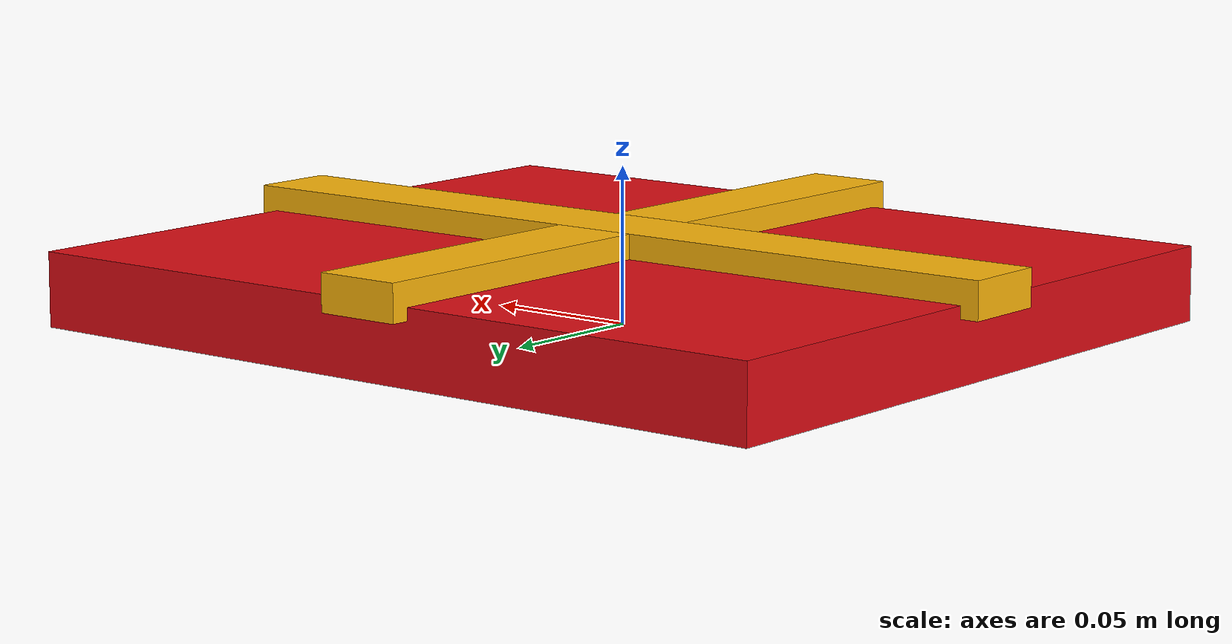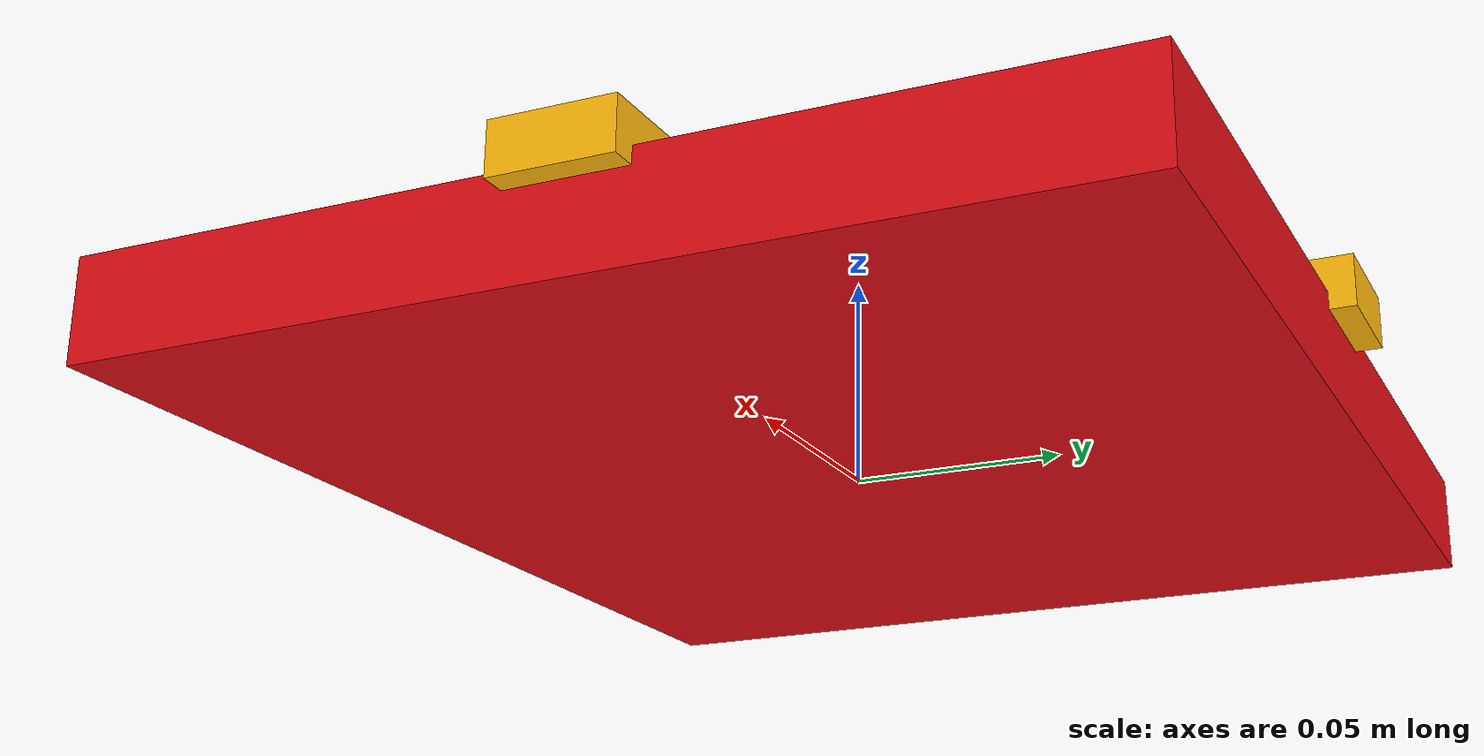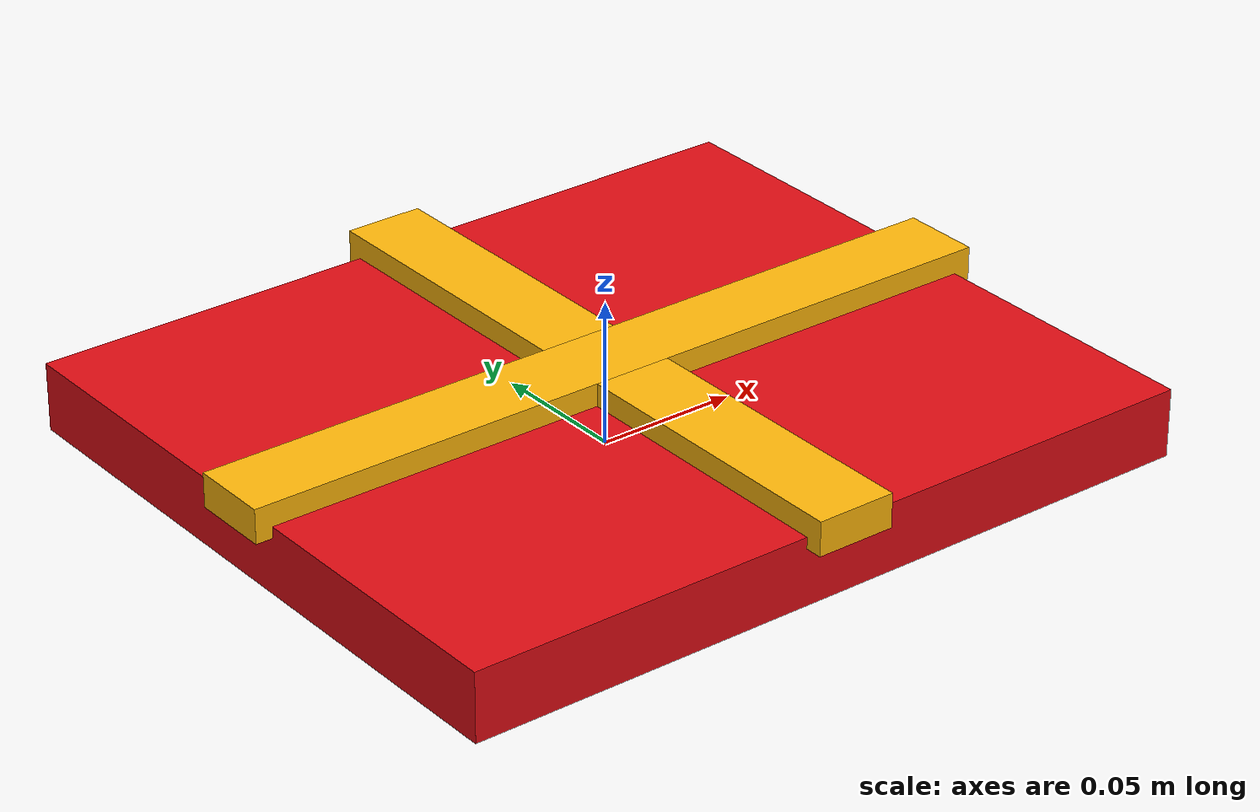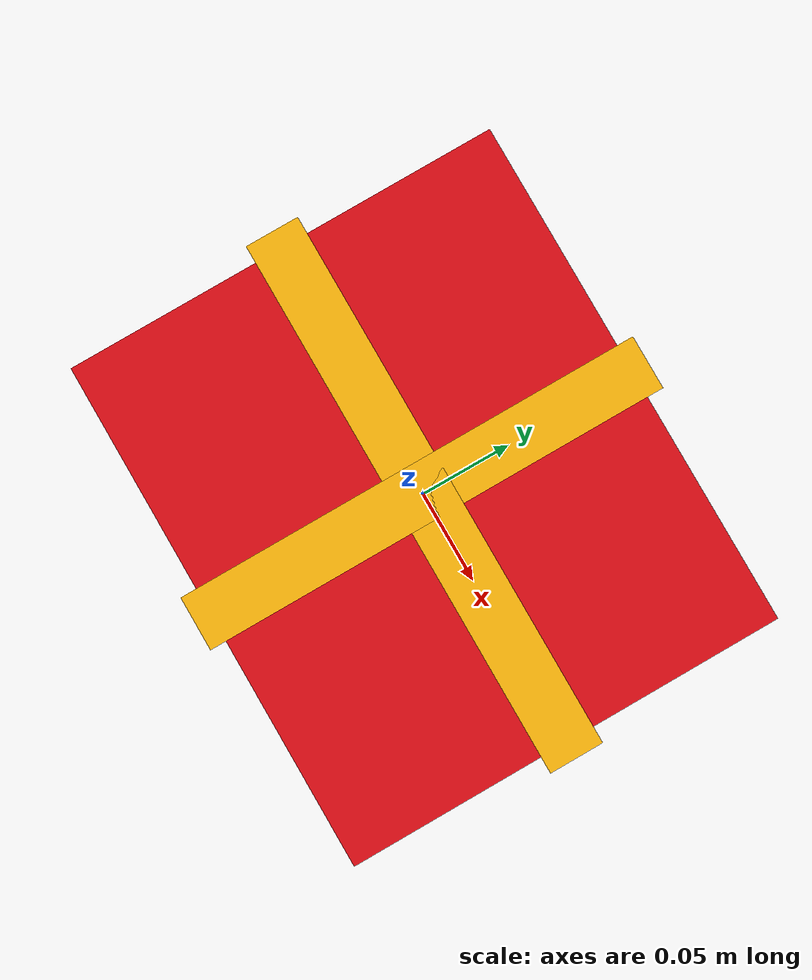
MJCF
<mujoco model="custom_gift_box_lid">
  <worldbody>
    <body>
      <body name="object">
        <geom
          conaffinity="0"
          contype="0"
          group="1"
          pos="0 0 0.012"
          rgba="0.88 0.05 0.08 1"
          size="0.136 0.116 0.012"
          type="box"
        />
        <geom
          conaffinity="0"
          contype="0"
          group="1"
          pos="0 0 0.026"
          rgba="1.0 0.72 0.04 1"
          size="0.014 0.122 0.006"
          type="box"
        />
        <geom
          conaffinity="0"
          contype="0"
          group="1"
          pos="0 0 0.026"
          rgba="1.0 0.72 0.04 1"
          size="0.142 0.014 0.006"
          type="box"
        />
        <geom
          density="100"
          friction="0.95 0.3 0.1"
          group="0"
          pos="0 0 0.012"
          rgba="0.8 0.8 0.8 0.0"
          size="0.136 0.116 0.012"
          type="box"
        />
        <geom
          name="reg_bbox"
          conaffinity="0"
          contype="0"
          group="3"
          pos="0 0 0.018"
          rgba="0 0 0 0"
          size="0.142 0.122 0.018"
          type="box"
        />
      </body>
      <site rgba="0 0 0 0" size="0.005" pos="0 0 0" name="bottom_site" />
      <site rgba="0 0 0 0" size="0.005" pos="0 0 0.036" name="top_site" />
      <site rgba="0 0 0 0" size="0.005" pos="0.142 0.122 0" name="horizontal_radius_site" />
    </body>
  </worldbody>
</mujoco>
